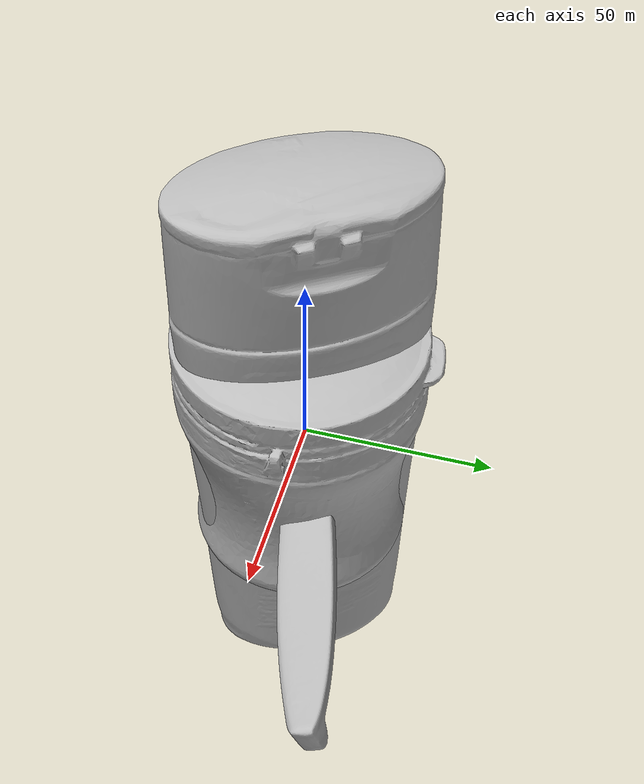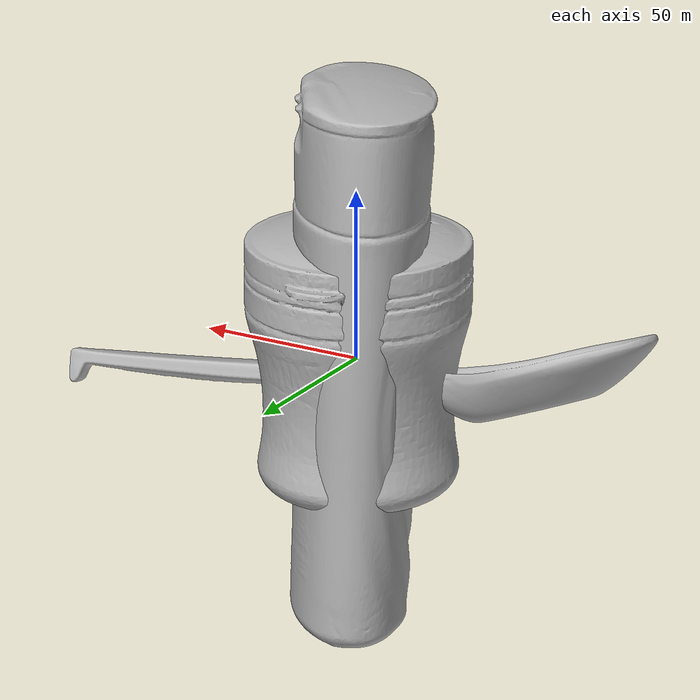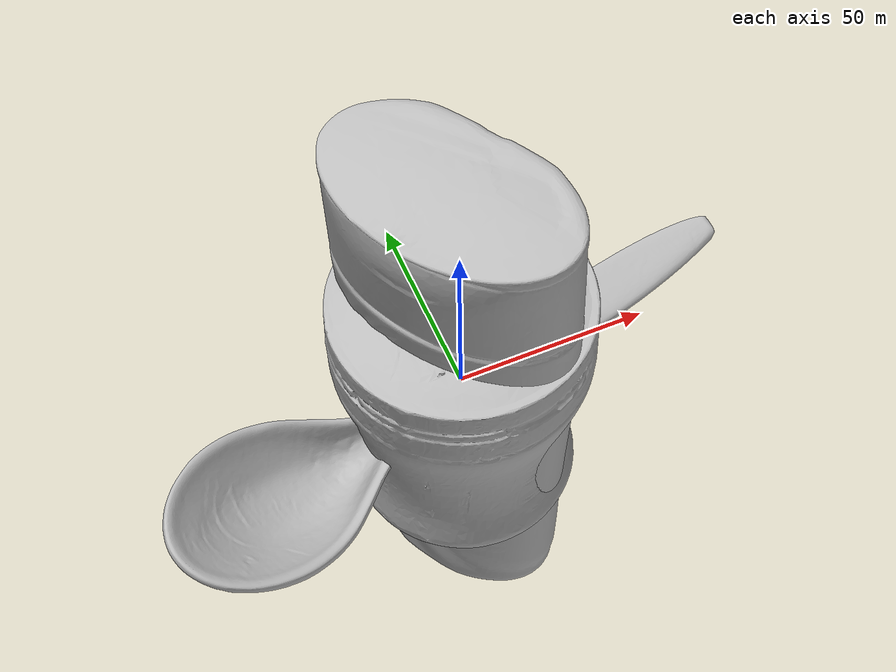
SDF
<sdf version="1.4">
 <world name="default">
  <light name="light1" type="point">
   <pose>0 0 1 0 0 0</pose>
   <diffuse>3 3 3 1</diffuse>
   <specular>3 3 3 1</specular>
  </light>
  <light name="light2" type="point">
   <pose>0 0.5 2 0 0 0</pose>
   <diffuse>1 1 1 1</diffuse>
   <specular>1 1 1 1</specular>
  </light>
  <light name="light3" type="point">
   <pose>0 0.5 2 0 0 0</pose>
   <diffuse>3 3 3 1</diffuse>
   <specular>3 3 3 1</specular>
  </light>
  <scene><ambient>0.7 0.7 0.7</ambient></scene>
  <model name="bottle1">
   <link name="link_bottle1">
    <collision name="default">
     <geometry>
      <mesh><uri>model://green_arrow/collision_meshes/collision.obj</uri><scale>1.0 1.0 1.0</scale></mesh>
     </geometry>
     <surface>
      <friction><ode><mu>0.5</mu><mu2>0.5</mu2></ode></friction>
      <contact><ode><max_vel>0</max_vel><min_depth>0.0001</min_depth><kp>1e8</kp></ode></contact>
     </surface>
    </collision>
    <visual name="default">
     <geometry>
      <mesh><uri>model://green_arrow/visual_meshes/visual.dae</uri><scale>1.0 1.0 1.0</scale></mesh>
     </geometry>
    </visual>
    <inertial>
     <mass>0.159866601228714</mass>
     <pose>0.0005358478520065546 -0.0008270691614598036 0.0022109695710241795 -0.0633227561078847 0.012984243694000861 0.6740794776591725</pose>
     <inertia>
      <ixx>0.00011596808</ixx>
      <iyy>0.00011579238</iyy>
      <izz>7.488036e-05</izz>
      <ixy>0</ixy>
      <ixz>0</ixz>
      <iyz>0</iyz>
     </inertia>
    </inertial>
   </link>
   <pose>0.04746194928884506 0.054770756512880325 0.038961656391620636 0.04528482237904745 0.024256390998964168 -0.5643395959246702</pose>
  </model>
  <model name="bottle2">
   <link name="link_bottle2">
    <collision name="default">
     <geometry>
      <mesh><uri>model://conditioner/collision_meshes/collision.obj</uri><scale>1.0 1.0 1.0</scale></mesh>
     </geometry>
     <surface>
      <friction><ode><mu>0.5</mu><mu2>0.5</mu2></ode></friction>
      <contact><ode><max_vel>0</max_vel><min_depth>0.0001</min_depth><kp>1e8</kp></ode></contact>
     </surface>
    </collision>
    <visual name="default">
     <geometry>
      <mesh><uri>model://conditioner/visual_meshes/visual.dae</uri><scale>1.0 1.0 1.0</scale></mesh>
     </geometry>
    </visual>
    <inertial>
     <mass>0.1887805312871933</mass>
     <pose>-0.00055994390277192 -0.00017297487647738308 0.004359682556241751 -0.005038374268360293 0.015306043554332214 0.015072361860715313</pose>
     <inertia>
      <ixx>0.00041066532</ixx>
      <iyy>0.00043991112</iyy>
      <izz>6.3318876e-05</izz>
      <ixy>0</ixy>
      <ixz>0</ixz>
      <iyz>0</iyz>
     </inertia>
    </inertial>
   </link>
   <pose>0.2356364130973816 -0.2663216292858124 0.08122977614402771 0.03689408460979218 -0.01566422718557788 -1.0331456154556962</pose>
  </model>
  <model name="silverware1">
   <link name="link_silverware1">
    <collision name="default">
     <geometry>
      <mesh><uri>model://doraemon_spoon/collision_meshes/collision.obj</uri><scale>1.0 1.0 1.0</scale></mesh>
     </geometry>
     <surface>
      <friction><ode><mu>0.5</mu><mu2>0.5</mu2></ode></friction>
      <contact><ode><max_vel>0</max_vel><min_depth>0.0001</min_depth><kp>1e8</kp></ode></contact>
     </surface>
    </collision>
    <visual name="default">
     <geometry>
      <mesh><uri>model://doraemon_spoon/visual_meshes/visual.dae</uri><scale>1.0 1.0 1.0</scale></mesh>
     </geometry>
    </visual>
    <inertial>
     <mass>0.029215902090072632</mass>
     <pose>-0.022165078669786453 -0.0006374581134878099 -0.003332544816657901 -0.009147069561506448 0.07380416816022378 -0.014123831282405222</pose>
     <inertia>
      <ixx>2.2884674e-06</ixx>
      <iyy>6.499588e-05</iyy>
      <izz>6.610089e-05</izz>
      <ixy>0</ixy>
      <ixz>0</ixz>
      <iyz>0</iyz>
     </inertia>
    </inertial>
   </link>
   <pose>0.07981771230697632 0.34345200657844543 0.014739330857992172 0.278999525545775 -0.010338898554523343 0.27023124210709915</pose>
  </model>
  <model name="stationery1">
   <link name="link_stationery1">
    <collision name="default">
     <geometry>
      <mesh><uri>model://correction_fuid/collision_meshes/collision.obj</uri><scale>1.0 1.0 1.0</scale></mesh>
     </geometry>
     <surface>
      <friction><ode><mu>0.5</mu><mu2>0.5</mu2></ode></friction>
      <contact><ode><max_vel>0</max_vel><min_depth>0.0001</min_depth><kp>1e8</kp></ode></contact>
     </surface>
    </collision>
    <visual name="default">
     <geometry>
      <mesh><uri>model://correction_fuid/visual_meshes/visual.dae</uri><scale>1.0 1.0 1.0</scale></mesh>
     </geometry>
    </visual>
    <inertial>
     <mass>0.02664039097726345</mass>
     <pose>-0.00012557733862195164 -0.0009722907561808825 -0.001618212671019137 -0.010846611490809042 0.019488348158978066 -0.015992455472155966</pose>
     <inertia>
      <ixx>2.5801672e-05</ixx>
      <iyy>1.5615498e-06</iyy>
      <izz>2.6473212e-05</izz>
      <ixy>0</ixy>
      <ixz>0</ixz>
      <iyz>0</iyz>
     </inertia>
    </inertial>
   </link>
   <pose>0.27586036920547485 -0.08726145327091217 0.009632833302021027 -0.0017271716605597222 -0.056167480155867026 -0.06975437711150038</pose>
  </model>
  <model name="bowl1">
   <link name="link_bowl1">
    <collision name="default">
     <geometry>
      <mesh><uri>model://doraemon_bowl/collision_meshes/collision.obj</uri><scale>1.0 1.0 1.0</scale></mesh>
     </geometry>
     <surface>
      <friction><ode><mu>0.5</mu><mu2>0.5</mu2></ode></friction>
      <contact><ode><max_vel>0</max_vel><min_depth>0.0001</min_depth><kp>1e8</kp></ode></contact>
     </surface>
    </collision>
    <visual name="default">
     <geometry>
      <mesh><uri>model://doraemon_bowl/visual_meshes/visual.dae</uri><scale>1.0 1.0 1.0</scale></mesh>
     </geometry>
    </visual>
    <inertial>
     <mass>0.0632677748799324</mass>
     <pose>-0.014629557728767395 0.00048571318620815873 -0.0020864882972091436 -0.005093978566849342 -0.10568406006641042 -0.026426380562233804</pose>
     <inertia>
      <ixx>8.773087e-05</ixx>
      <iyy>0.00011545301</iyy>
      <izz>0.00016985848</izz>
      <ixy>0</ixy>
      <ixz>0</ixz>
      <iyz>0</iyz>
     </inertia>
    </inertial>
   </link>
   <pose>0.13760632276535034 -0.32240715622901917 0.025905493646860123 0.008593105729865907 0.006343685031903235 -2.6711646487791136</pose>
  </model>
  <model name="cup1">
   <link name="link_cup1">
    <collision name="default">
     <geometry>
      <mesh><uri>model://doraemon_cup/collision_meshes/collision.obj</uri><scale>1.0 1.0 1.0</scale></mesh>
     </geometry>
     <surface>
      <friction><ode><mu>0.5</mu><mu2>0.5</mu2></ode></friction>
      <contact><ode><max_vel>0</max_vel><min_depth>0.0001</min_depth><kp>1e8</kp></ode></contact>
     </surface>
    </collision>
    <visual name="default">
     <geometry>
      <mesh><uri>model://doraemon_cup/visual_meshes/visual.dae</uri><scale>1.0 1.0 1.0</scale></mesh>
     </geometry>
    </visual>
    <inertial>
     <mass>0.04278137534856796</mass>
     <pose>-0.0003292987239547074 -0.0016633577179163694 -0.0022522551007568836 0.19498548950287564 -0.013693938110122818 -0.3205458650037051</pose>
     <inertia>
      <ixx>5.8507427e-05</ixx>
      <iyy>5.6580026e-05</iyy>
      <izz>4.623892e-05</izz>
      <ixy>0</ixy>
      <ixz>0</ixz>
      <iyz>0</iyz>
     </inertia>
    </inertial>
   </link>
   <pose>0.1447146087884903 0.28094205260276794 0.04622989892959595 -0.013051813267814301 -0.0072134219186782 0.35727418606195177</pose>
  </model>
  <model name="plate1">
   <link name="link_plate1">
    <collision name="default">
     <geometry>
      <mesh><uri>model://hello_kitty_plate/collision_meshes/collision.obj</uri><scale>1.0 1.0 1.0</scale></mesh>
     </geometry>
     <surface>
      <friction><ode><mu>0.5</mu><mu2>0.5</mu2></ode></friction>
      <contact><ode><max_vel>0</max_vel><min_depth>0.0001</min_depth><kp>1e8</kp></ode></contact>
     </surface>
    </collision>
    <visual name="default">
     <geometry>
      <mesh><uri>model://hello_kitty_plate/visual_meshes/visual.dae</uri><scale>1.0 1.0 1.0</scale></mesh>
     </geometry>
    </visual>
    <inertial>
     <mass>0.03555070236325264</mass>
     <pose>0.0073143006302416325 0.0002893744967877865 -0.0027947186026722193 -0.00010431820965322355 -0.007054446463638022 -0.014449070801334592</pose>
     <inertia>
      <ixx>6.855243e-05</ixx>
      <iyy>0.00012937908</iyy>
      <izz>0.0001964492</izz>
      <ixy>0</ixy>
      <ixz>0</ixz>
      <iyz>0</iyz>
     </inertia>
    </inertial>
   </link>
   <pose>0.18184787034988403 0.19957132637500763 0.06425406038761139 -0.4908119992858571 -0.47608536767776544 2.741612409950328</pose>
  </model>
  <model name="box4">
   <link name="link_box4">
    <collision name="default">
     <geometry>
      <mesh><uri>model://wooden_puzzle1/collision_meshes/collision.obj</uri><scale>1.0 1.0 1.0</scale></mesh>
     </geometry>
     <surface>
      <friction><ode><mu>0.5</mu><mu2>0.5</mu2></ode></friction>
      <contact><ode><max_vel>0</max_vel><min_depth>0.0001</min_depth><kp>1e8</kp></ode></contact>
     </surface>
    </collision>
    <visual name="default">
     <geometry>
      <mesh><uri>model://wooden_puzzle1/visual_meshes/visual.dae</uri><scale>1.0 1.0 1.0</scale></mesh>
     </geometry>
    </visual>
    <inertial>
     <mass>0.03278602659702301</mass>
     <pose>-0.00017350679263472557 7.972260937094688e-05 -9.191554272547364e-05 -0.07784358361794479 -0.263610796923839 -0.5528741327723476</pose>
     <inertia>
      <ixx>6.1858273e-06</ixx>
      <iyy>6.0667485e-06</iyy>
      <izz>6.139123e-06</izz>
      <ixy>0</ixy>
      <ixz>0</ixz>
      <iyz>0</iyz>
     </inertia>
    </inertial>
   </link>
   <pose>0.13446339964866638 -0.17965932190418243 0.01680200919508934 0.010512098700838022 -0.00945534868267381 1.528920540921244</pose>
  </model>
  <physics type="ode">
   <max_contacts>50</max_contacts>
   <ode>
    <solver><type>quick</type><iters>75</iters></solver>
    <constraints>
     <contact_max_correcting_vel>0</contact_max_correcting_vel>
     <contact_surface_layer>0</contact_surface_layer>
    </constraints>
   </ode>
  </physics>
 </world>
</sdf>
